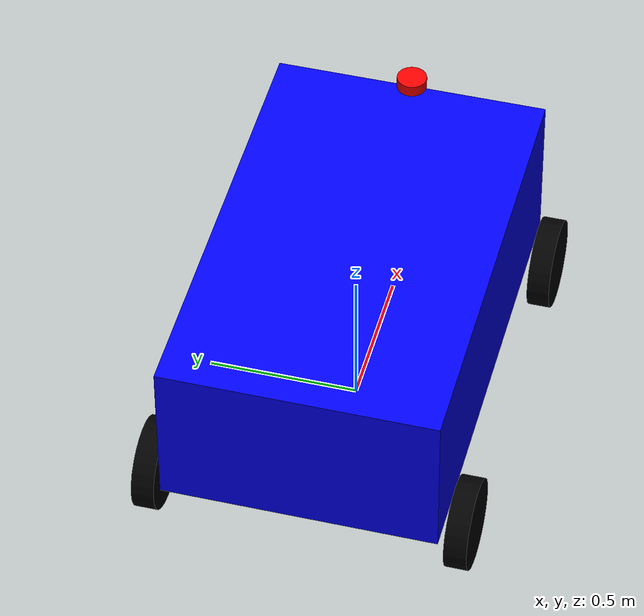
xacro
<?xml version="1.0"?>
<robot xmlns:xacro="http://www.ros.org/wiki/xacro" name="ika_robot">

  <material name="black"><color rgba="0 0 0 1"/></material>
  <material name="red"><color rgba="1 0 0 1"/></material>
  <material name="blue"><color rgba="0 0 1 1"/></material>

  <link name="base_footprint"/>

  <joint name="base_footprint_joint" type="fixed">
    <parent link="base_footprint"/>
    <child link="base_link"/>
    <origin xyz="0 0 0.30" rpy="0 0 0"/>
  </joint>

  <link name="base_link">
    <visual>
      <origin xyz="0 0 0.15" rpy="0 0 0"/>
      <geometry>
        <box size="1.48 0.91 0.53"/>
      </geometry>
      <material name="blue"/>
    </visual>
    <collision>
      <origin xyz="0 0 0.15" rpy="0 0 0"/>
      <geometry>
        <box size="1.48 0.91 0.53"/>
      </geometry>
    </collision>
    <inertial>
      <origin xyz="0 0 0.10" rpy="0 0 0"/>
      <mass value="306.0"/>
      <inertia ixx="38.018" ixy="0.0" ixz="0.0" iyy="63.018" iyz="0.0" izz="86.710"/>
    </inertial>
  </link>

  <xacro:macro name="wheel" params="prefix x_reflect y_reflect">
    <link name="${prefix}_wheel">
      <visual>
        <origin xyz="0 0 0" rpy="${pi/2} 0 0"/>
        <geometry><cylinder radius="0.15" length="0.075"/></geometry>
        <material name="black"/>
      </visual>
      <collision>
        <origin xyz="0 0 0" rpy="${pi/2} 0 0"/>
        <geometry><cylinder radius="0.15" length="0.075"/></geometry>
      </collision>
      <inertial>
        <mass value="5.0"/>
        <inertia ixx="0.05" ixy="0" ixz="0" iyy="0.05" iyz="0" izz="0.05"/>
      </inertial>
    </link>
    <joint name="${prefix}_wheel_joint" type="continuous">
      <parent link="base_link"/>
      <child link="${prefix}_wheel"/>
      <origin xyz="${x_reflect*0.6} ${y_reflect*0.5125} -0.15" rpy="0 0 0"/>
      <axis xyz="0 1 0"/>
    </joint>
  </xacro:macro>

  <xacro:wheel prefix="front_left" x_reflect="1" y_reflect="1"/>
  <xacro:wheel prefix="front_right" x_reflect="1" y_reflect="-1"/>
  <xacro:wheel prefix="back_left" x_reflect="-1" y_reflect="1"/>
  <xacro:wheel prefix="back_right" x_reflect="-1" y_reflect="-1"/>

  <gazebo>
    <plugin name="diff_drive" filename="libgazebo_ros_diff_drive.so">
      <ros>
        <remapping>cmd_vel:=cmd_vel</remapping>
        <remapping>odom:=odom</remapping>
      </ros>
      <num_wheel_pairs>2</num_wheel_pairs>
      <left_joint>front_left_wheel_joint</left_joint>
      <left_joint>back_left_wheel_joint</left_joint>
      <right_joint>front_right_wheel_joint</right_joint>
      <right_joint>back_right_wheel_joint</right_joint>
      <wheel_separation>1.025</wheel_separation>
      <wheel_diameter>0.30</wheel_diameter>
      <max_wheel_torque>200</max_wheel_torque>
      <max_wheel_acceleration>2.0</max_wheel_acceleration>

      <publish_odom>true</publish_odom>
      <publish_odom_tf>true</publish_odom_tf>
      <robot_base_frame>base_footprint</robot_base_frame>
      <odometry_frame>odom</odometry_frame>
    </plugin>
  </gazebo>

  <link name="lidar_link">
    <visual>
      <geometry><cylinder radius="0.05" length="0.05"/></geometry>
      <material name="red"/>
    </visual>
    <collision>
      <geometry><cylinder radius="0.001" length="0.001"/></geometry>
    </collision>
    <inertial>
      <mass value="0.5"/> <inertia ixx="0.001" ixy="0" ixz="0" iyy="0.001" iyz="0" izz="0.001"/>
    </inertial>
  </link>

  <joint name="lidar_joint" type="fixed">
    <parent link="base_link"/>
    <child link="lidar_link"/>
    <origin xyz="0.74 0 0.43" rpy="0 0 0"/>
  </joint>

  <gazebo reference="lidar_link">
    <sensor name="lidar_3d" type="ray">
      <visualize>true</visualize>
      <update_rate>10</update_rate>
      <ray>
        <scan>
          <horizontal>
            <samples>180</samples>
            <resolution>1</resolution>
            <min_angle>-1.5708</min_angle>
            <max_angle>1.5708</max_angle>
          </horizontal>
          <vertical>
            <samples>8</samples>
            <resolution>1</resolution>
            <min_angle>-0.4</min_angle>
            <max_angle>0.4</max_angle>
          </vertical>
        </scan>
        <range>
          <min>0.25</min>
          <max>12.0</max>
          <resolution>0.01</resolution>
        </range>
      </ray>
      <plugin name="lidar_3d_plugin" filename="libgazebo_ros_ray_sensor.so">
        <ros>
          <remapping>~/out:=points</remapping>
        </ros>
        <output_type>sensor_msgs/PointCloud2</output_type>
        <frame_name>lidar_link</frame_name>
      </plugin>
    </sensor>
  </gazebo>

  <gazebo reference="base_link">
    <sensor name="imu_sensor" type="imu">
      <plugin name="imu_plugin" filename="libgazebo_ros_imu_sensor.so">
        <ros>
          <namespace>/</namespace>
          <remapping>~/out:=imu/data</remapping>
        </ros>
        <initial_orientation_as_reference>false</initial_orientation_as_reference>
      </plugin>
      <always_on>true</always_on>
      <update_rate>50</update_rate>
      <visualize>true</visualize>
    </sensor>
  </gazebo>

  <gazebo reference="front_left_wheel">
    <mu1>2.0</mu1> <mu2>2.0</mu2>
    <kp>10000000.0</kp> <kd>1.0</kd> <minDepth>0.001</minDepth>
  </gazebo>
  <gazebo reference="front_right_wheel">
    <mu1>2.0</mu1> <mu2>2.0</mu2>
    <kp>10000000.0</kp> <kd>1.0</kd> <minDepth>0.001</minDepth>
  </gazebo>
  <gazebo reference="back_left_wheel">
    <mu1>2.0</mu1> <mu2>2.0</mu2>
    <kp>10000000.0</kp> <kd>1.0</kd> <minDepth>0.001</minDepth>
  </gazebo>
  <gazebo reference="back_right_wheel">
    <mu1>2.0</mu1> <mu2>2.0</mu2>
    <kp>10000000.0</kp> <kd>1.0</kd> <minDepth>0.001</minDepth>
  </gazebo>
</robot>
